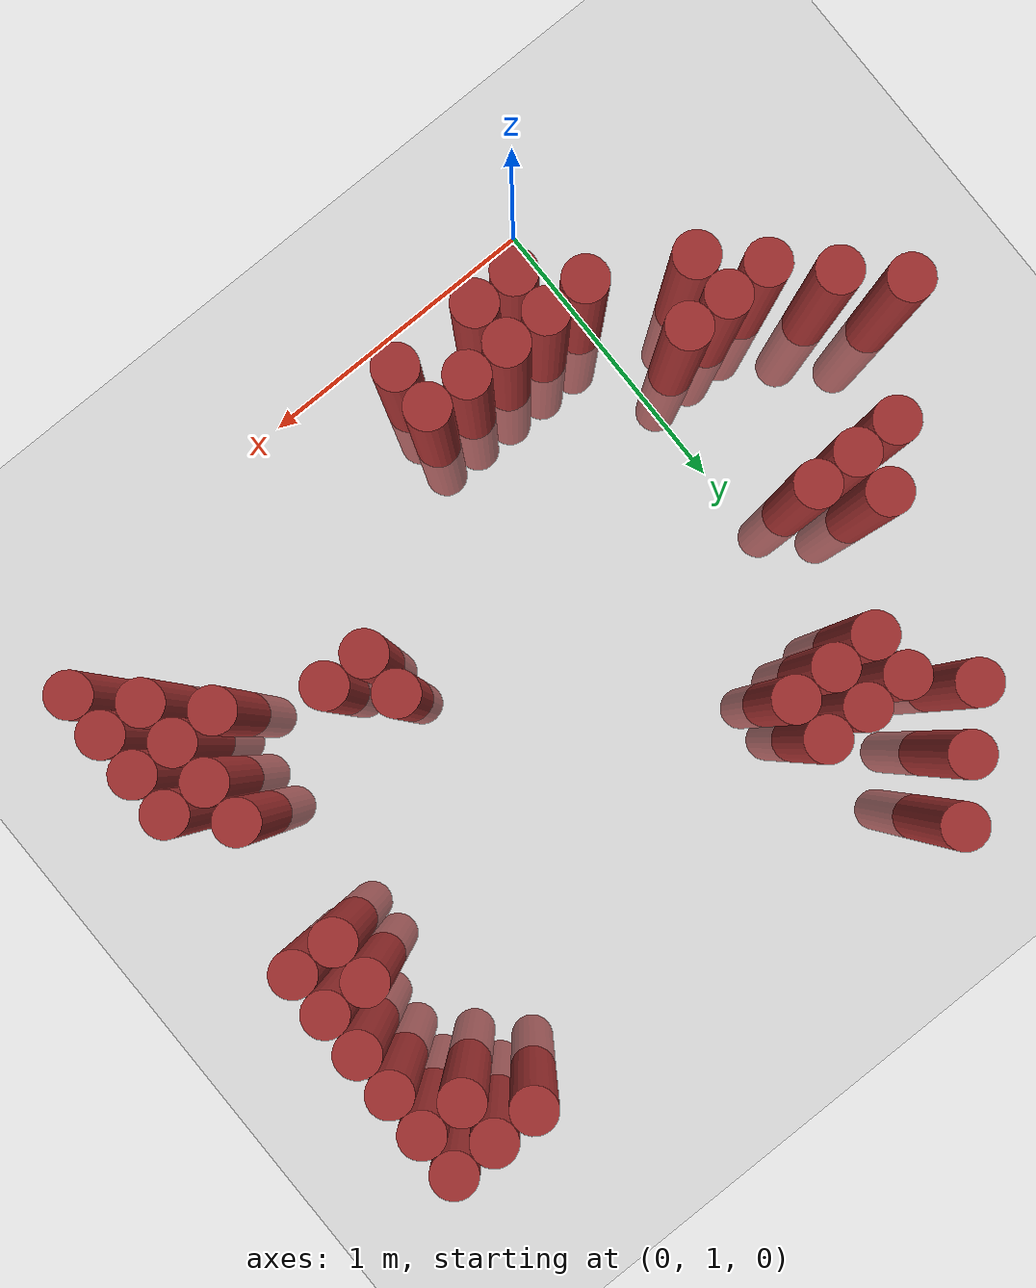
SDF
<sdf version="1.6">
 <world name="default">
  <model name="ground_plane">
   <static>1</static>
   <link name="link">
    <collision name="collision">
     <geometry><plane><normal>0 0 1</normal><size>100 100</size></plane></geometry>
     <surface><friction><ode><mu>100</mu><mu2>50</mu2></ode></friction></surface>
    </collision>
    <visual name="visual">
     <cast_shadows>0</cast_shadows>
     <geometry><plane><normal>0 0 1</normal><size>100 100</size></plane></geometry>
     <material>
      <script><uri>file://media/materials/scripts/gazebo.material</uri><name>Gazebo/Grey</name></script>
     </material>
    </visual>
   </link>
  </model>
  <model name="unit_cylinder_384">
   <static>1</static>
   <pose>-0.725000 1.975000 0.000000 0.000000 0.000000 0.000000</pose>
   <link name="link">
    <inertial>
     <mass>1</mass>
     <inertia><ixx>0.145833</ixx><ixy>0</ixy><ixz>0</ixz><iyy>0.145833</iyy><iyz>0</iyz><izz>0.125</izz></inertia>
    </inertial>
    <collision name="collision">
     <geometry><cylinder><radius>0.075000</radius><length>1.5</length></cylinder></geometry>
    </collision>
    <visual name="visual">
     <geometry><cylinder><radius>0.075000</radius><length>1.5</length></cylinder></geometry>
     <material>
      <ambient>0.648000 0.192000 0.192000 1</ambient>
      <diffuse>0.648000 0.192000 0.192000 1</diffuse>
     </material>
     <material>
      <script><name>Gazebo/Grey</name><uri>file://media/materials/scripts/gazebo.material</uri></script>
     </material>
    </visual>
   </link>
  </model>
  <model name="unit_cylinder_391">
   <static>1</static>
   <pose>-0.575000 1.825000 0.000000 0.000000 0.000000 0.000000</pose>
   <link name="link">
    <inertial>
     <mass>1</mass>
     <inertia><ixx>0.145833</ixx><ixy>0</ixy><ixz>0</ixz><iyy>0.145833</iyy><iyz>0</iyz><izz>0.125</izz></inertia>
    </inertial>
    <collision name="collision">
     <geometry><cylinder><radius>0.075000</radius><length>1.5</length></cylinder></geometry>
    </collision>
    <visual name="visual">
     <geometry><cylinder><radius>0.075000</radius><length>1.5</length></cylinder></geometry>
     <material>
      <ambient>0.648000 0.192000 0.192000 1</ambient>
      <diffuse>0.648000 0.192000 0.192000 1</diffuse>
     </material>
     <material>
      <script><name>Gazebo/Grey</name><uri>file://media/materials/scripts/gazebo.material</uri></script>
     </material>
    </visual>
   </link>
  </model>
  <model name="unit_cylinder_399">
   <static>1</static>
   <pose>-0.425000 1.675000 0.000000 0.000000 0.000000 0.000000</pose>
   <link name="link">
    <inertial>
     <mass>1</mass>
     <inertia><ixx>0.145833</ixx><ixy>0</ixy><ixz>0</ixz><iyy>0.145833</iyy><iyz>0</iyz><izz>0.125</izz></inertia>
    </inertial>
    <collision name="collision">
     <geometry><cylinder><radius>0.075000</radius><length>1.5</length></cylinder></geometry>
    </collision>
    <visual name="visual">
     <geometry><cylinder><radius>0.075000</radius><length>1.5</length></cylinder></geometry>
     <material>
      <ambient>0.648000 0.192000 0.192000 1</ambient>
      <diffuse>0.648000 0.192000 0.192000 1</diffuse>
     </material>
     <material>
      <script><name>Gazebo/Grey</name><uri>file://media/materials/scripts/gazebo.material</uri></script>
     </material>
    </visual>
   </link>
  </model>
  <model name="unit_cylinder_400">
   <static>1</static>
   <pose>-0.425000 2.275000 0.000000 0.000000 0.000000 0.000000</pose>
   <link name="link">
    <inertial>
     <mass>1</mass>
     <inertia><ixx>0.145833</ixx><ixy>0</ixy><ixz>0</ixz><iyy>0.145833</iyy><iyz>0</iyz><izz>0.125</izz></inertia>
    </inertial>
    <collision name="collision">
     <geometry><cylinder><radius>0.075000</radius><length>1.5</length></cylinder></geometry>
    </collision>
    <visual name="visual">
     <geometry><cylinder><radius>0.075000</radius><length>1.5</length></cylinder></geometry>
     <material>
      <ambient>0.648000 0.192000 0.192000 1</ambient>
      <diffuse>0.648000 0.192000 0.192000 1</diffuse>
     </material>
     <material>
      <script><name>Gazebo/Grey</name><uri>file://media/materials/scripts/gazebo.material</uri></script>
     </material>
    </visual>
   </link>
  </model>
  <model name="unit_cylinder_403">
   <static>1</static>
   <pose>-0.275000 1.525000 0.000000 0.000000 0.000000 0.000000</pose>
   <link name="link">
    <inertial>
     <mass>1</mass>
     <inertia><ixx>0.145833</ixx><ixy>0</ixy><ixz>0</ixz><iyy>0.145833</iyy><iyz>0</iyz><izz>0.125</izz></inertia>
    </inertial>
    <collision name="collision">
     <geometry><cylinder><radius>0.075000</radius><length>1.5</length></cylinder></geometry>
    </collision>
    <visual name="visual">
     <geometry><cylinder><radius>0.075000</radius><length>1.5</length></cylinder></geometry>
     <material>
      <ambient>0.648000 0.192000 0.192000 1</ambient>
      <diffuse>0.648000 0.192000 0.192000 1</diffuse>
     </material>
     <material>
      <script><name>Gazebo/Grey</name><uri>file://media/materials/scripts/gazebo.material</uri></script>
     </material>
    </visual>
   </link>
  </model>
  <model name="unit_cylinder_404">
   <static>1</static>
   <pose>-0.275000 1.675000 0.000000 0.000000 0.000000 0.000000</pose>
   <link name="link">
    <inertial>
     <mass>1</mass>
     <inertia><ixx>0.145833</ixx><ixy>0</ixy><ixz>0</ixz><iyy>0.145833</iyy><iyz>0</iyz><izz>0.125</izz></inertia>
    </inertial>
    <collision name="collision">
     <geometry><cylinder><radius>0.075000</radius><length>1.5</length></cylinder></geometry>
    </collision>
    <visual name="visual">
     <geometry><cylinder><radius>0.075000</radius><length>1.5</length></cylinder></geometry>
     <material>
      <ambient>0.648000 0.192000 0.192000 1</ambient>
      <diffuse>0.648000 0.192000 0.192000 1</diffuse>
     </material>
     <material>
      <script><name>Gazebo/Grey</name><uri>file://media/materials/scripts/gazebo.material</uri></script>
     </material>
    </visual>
   </link>
  </model>
  <model name="unit_cylinder_405">
   <static>1</static>
   <pose>-0.275000 2.275000 0.000000 0.000000 0.000000 0.000000</pose>
   <link name="link">
    <inertial>
     <mass>1</mass>
     <inertia><ixx>0.145833</ixx><ixy>0</ixy><ixz>0</ixz><iyy>0.145833</iyy><iyz>0</iyz><izz>0.125</izz></inertia>
    </inertial>
    <collision name="collision">
     <geometry><cylinder><radius>0.075000</radius><length>1.5</length></cylinder></geometry>
    </collision>
    <visual name="visual">
     <geometry><cylinder><radius>0.075000</radius><length>1.5</length></cylinder></geometry>
     <material>
      <ambient>0.648000 0.192000 0.192000 1</ambient>
      <diffuse>0.648000 0.192000 0.192000 1</diffuse>
     </material>
     <material>
      <script><name>Gazebo/Grey</name><uri>file://media/materials/scripts/gazebo.material</uri></script>
     </material>
    </visual>
   </link>
  </model>
  <model name="unit_cylinder_406">
   <static>1</static>
   <pose>-0.275000 2.425000 0.000000 0.000000 0.000000 0.000000</pose>
   <link name="link">
    <inertial>
     <mass>1</mass>
     <inertia><ixx>0.145833</ixx><ixy>0</ixy><ixz>0</ixz><iyy>0.145833</iyy><iyz>0</iyz><izz>0.125</izz></inertia>
    </inertial>
    <collision name="collision">
     <geometry><cylinder><radius>0.075000</radius><length>1.5</length></cylinder></geometry>
    </collision>
    <visual name="visual">
     <geometry><cylinder><radius>0.075000</radius><length>1.5</length></cylinder></geometry>
     <material>
      <ambient>0.648000 0.192000 0.192000 1</ambient>
      <diffuse>0.648000 0.192000 0.192000 1</diffuse>
     </material>
     <material>
      <script><name>Gazebo/Grey</name><uri>file://media/materials/scripts/gazebo.material</uri></script>
     </material>
    </visual>
   </link>
  </model>
  <model name="unit_cylinder_411">
   <static>1</static>
   <pose>-0.125000 1.675000 0.000000 0.000000 0.000000 0.000000</pose>
   <link name="link">
    <inertial>
     <mass>1</mass>
     <inertia><ixx>0.145833</ixx><ixy>0</ixy><ixz>0</ixz><iyy>0.145833</iyy><iyz>0</iyz><izz>0.125</izz></inertia>
    </inertial>
    <collision name="collision">
     <geometry><cylinder><radius>0.075000</radius><length>1.5</length></cylinder></geometry>
    </collision>
    <visual name="visual">
     <geometry><cylinder><radius>0.075000</radius><length>1.5</length></cylinder></geometry>
     <material>
      <ambient>0.648000 0.192000 0.192000 1</ambient>
      <diffuse>0.648000 0.192000 0.192000 1</diffuse>
     </material>
     <material>
      <script><name>Gazebo/Grey</name><uri>file://media/materials/scripts/gazebo.material</uri></script>
     </material>
    </visual>
   </link>
  </model>
  <model name="unit_cylinder_412">
   <static>1</static>
   <pose>-0.125000 2.275000 0.000000 0.000000 0.000000 0.000000</pose>
   <link name="link">
    <inertial>
     <mass>1</mass>
     <inertia><ixx>0.145833</ixx><ixy>0</ixy><ixz>0</ixz><iyy>0.145833</iyy><iyz>0</iyz><izz>0.125</izz></inertia>
    </inertial>
    <collision name="collision">
     <geometry><cylinder><radius>0.075000</radius><length>1.5</length></cylinder></geometry>
    </collision>
    <visual name="visual">
     <geometry><cylinder><radius>0.075000</radius><length>1.5</length></cylinder></geometry>
     <material>
      <ambient>0.648000 0.192000 0.192000 1</ambient>
      <diffuse>0.648000 0.192000 0.192000 1</diffuse>
     </material>
     <material>
      <script><name>Gazebo/Grey</name><uri>file://media/materials/scripts/gazebo.material</uri></script>
     </material>
    </visual>
   </link>
  </model>
  <model name="unit_cylinder_413">
   <static>1</static>
   <pose>-0.125000 3.025000 0.000000 0.000000 0.000000 0.000000</pose>
   <link name="link">
    <inertial>
     <mass>1</mass>
     <inertia><ixx>0.145833</ixx><ixy>0</ixy><ixz>0</ixz><iyy>0.145833</iyy><iyz>0</iyz><izz>0.125</izz></inertia>
    </inertial>
    <collision name="collision">
     <geometry><cylinder><radius>0.075000</radius><length>1.5</length></cylinder></geometry>
    </collision>
    <visual name="visual">
     <geometry><cylinder><radius>0.075000</radius><length>1.5</length></cylinder></geometry>
     <material>
      <ambient>0.648000 0.192000 0.192000 1</ambient>
      <diffuse>0.648000 0.192000 0.192000 1</diffuse>
     </material>
     <material>
      <script><name>Gazebo/Grey</name><uri>file://media/materials/scripts/gazebo.material</uri></script>
     </material>
    </visual>
   </link>
  </model>
  <model name="unit_cylinder_422">
   <static>1</static>
   <pose>0.025000 1.375000 0.000000 0.000000 0.000000 0.000000</pose>
   <link name="link">
    <inertial>
     <mass>1</mass>
     <inertia><ixx>0.145833</ixx><ixy>0</ixy><ixz>0</ixz><iyy>0.145833</iyy><iyz>0</iyz><izz>0.125</izz></inertia>
    </inertial>
    <collision name="collision">
     <geometry><cylinder><radius>0.075000</radius><length>1.5</length></cylinder></geometry>
    </collision>
    <visual name="visual">
     <geometry><cylinder><radius>0.075000</radius><length>1.5</length></cylinder></geometry>
     <material>
      <ambient>0.648000 0.192000 0.192000 1</ambient>
      <diffuse>0.648000 0.192000 0.192000 1</diffuse>
     </material>
     <material>
      <script><name>Gazebo/Grey</name><uri>file://media/materials/scripts/gazebo.material</uri></script>
     </material>
    </visual>
   </link>
  </model>
  <model name="unit_cylinder_423">
   <static>1</static>
   <pose>0.025000 2.725000 0.000000 0.000000 0.000000 0.000000</pose>
   <link name="link">
    <inertial>
     <mass>1</mass>
     <inertia><ixx>0.145833</ixx><ixy>0</ixy><ixz>0</ixz><iyy>0.145833</iyy><iyz>0</iyz><izz>0.125</izz></inertia>
    </inertial>
    <collision name="collision">
     <geometry><cylinder><radius>0.075000</radius><length>1.5</length></cylinder></geometry>
    </collision>
    <visual name="visual">
     <geometry><cylinder><radius>0.075000</radius><length>1.5</length></cylinder></geometry>
     <material>
      <ambient>0.648000 0.192000 0.192000 1</ambient>
      <diffuse>0.648000 0.192000 0.192000 1</diffuse>
     </material>
     <material>
      <script><name>Gazebo/Grey</name><uri>file://media/materials/scripts/gazebo.material</uri></script>
     </material>
    </visual>
   </link>
  </model>
  <model name="unit_cylinder_424">
   <static>1</static>
   <pose>0.025000 2.875000 0.000000 0.000000 0.000000 0.000000</pose>
   <link name="link">
    <inertial>
     <mass>1</mass>
     <inertia><ixx>0.145833</ixx><ixy>0</ixy><ixz>0</ixz><iyy>0.145833</iyy><iyz>0</iyz><izz>0.125</izz></inertia>
    </inertial>
    <collision name="collision">
     <geometry><cylinder><radius>0.075000</radius><length>1.5</length></cylinder></geometry>
    </collision>
    <visual name="visual">
     <geometry><cylinder><radius>0.075000</radius><length>1.5</length></cylinder></geometry>
     <material>
      <ambient>0.648000 0.192000 0.192000 1</ambient>
      <diffuse>0.648000 0.192000 0.192000 1</diffuse>
     </material>
     <material>
      <script><name>Gazebo/Grey</name><uri>file://media/materials/scripts/gazebo.material</uri></script>
     </material>
    </visual>
   </link>
  </model>
  <model name="unit_cylinder_425">
   <static>1</static>
   <pose>0.025000 3.175000 0.000000 0.000000 0.000000 0.000000</pose>
   <link name="link">
    <inertial>
     <mass>1</mass>
     <inertia><ixx>0.145833</ixx><ixy>0</ixy><ixz>0</ixz><iyy>0.145833</iyy><iyz>0</iyz><izz>0.125</izz></inertia>
    </inertial>
    <collision name="collision">
     <geometry><cylinder><radius>0.075000</radius><length>1.5</length></cylinder></geometry>
    </collision>
    <visual name="visual">
     <geometry><cylinder><radius>0.075000</radius><length>1.5</length></cylinder></geometry>
     <material>
      <ambient>0.648000 0.192000 0.192000 1</ambient>
      <diffuse>0.648000 0.192000 0.192000 1</diffuse>
     </material>
     <material>
      <script><name>Gazebo/Grey</name><uri>file://media/materials/scripts/gazebo.material</uri></script>
     </material>
    </visual>
   </link>
  </model>
  <model name="unit_cylinder_436">
   <static>1</static>
   <pose>0.175000 1.225000 0.000000 0.000000 0.000000 0.000000</pose>
   <link name="link">
    <inertial>
     <mass>1</mass>
     <inertia><ixx>0.145833</ixx><ixy>0</ixy><ixz>0</ixz><iyy>0.145833</iyy><iyz>0</iyz><izz>0.125</izz></inertia>
    </inertial>
    <collision name="collision">
     <geometry><cylinder><radius>0.075000</radius><length>1.5</length></cylinder></geometry>
    </collision>
    <visual name="visual">
     <geometry><cylinder><radius>0.075000</radius><length>1.5</length></cylinder></geometry>
     <material>
      <ambient>0.648000 0.192000 0.192000 1</ambient>
      <diffuse>0.648000 0.192000 0.192000 1</diffuse>
     </material>
     <material>
      <script><name>Gazebo/Grey</name><uri>file://media/materials/scripts/gazebo.material</uri></script>
     </material>
    </visual>
   </link>
  </model>
  <model name="unit_cylinder_437">
   <static>1</static>
   <pose>0.175000 1.375000 0.000000 0.000000 0.000000 0.000000</pose>
   <link name="link">
    <inertial>
     <mass>1</mass>
     <inertia><ixx>0.145833</ixx><ixy>0</ixy><ixz>0</ixz><iyy>0.145833</iyy><iyz>0</iyz><izz>0.125</izz></inertia>
    </inertial>
    <collision name="collision">
     <geometry><cylinder><radius>0.075000</radius><length>1.5</length></cylinder></geometry>
    </collision>
    <visual name="visual">
     <geometry><cylinder><radius>0.075000</radius><length>1.5</length></cylinder></geometry>
     <material>
      <ambient>0.648000 0.192000 0.192000 1</ambient>
      <diffuse>0.648000 0.192000 0.192000 1</diffuse>
     </material>
     <material>
      <script><name>Gazebo/Grey</name><uri>file://media/materials/scripts/gazebo.material</uri></script>
     </material>
    </visual>
   </link>
  </model>
  <model name="unit_cylinder_438">
   <static>1</static>
   <pose>0.175000 2.725000 0.000000 0.000000 0.000000 0.000000</pose>
   <link name="link">
    <inertial>
     <mass>1</mass>
     <inertia><ixx>0.145833</ixx><ixy>0</ixy><ixz>0</ixz><iyy>0.145833</iyy><iyz>0</iyz><izz>0.125</izz></inertia>
    </inertial>
    <collision name="collision">
     <geometry><cylinder><radius>0.075000</radius><length>1.5</length></cylinder></geometry>
    </collision>
    <visual name="visual">
     <geometry><cylinder><radius>0.075000</radius><length>1.5</length></cylinder></geometry>
     <material>
      <ambient>0.648000 0.192000 0.192000 1</ambient>
      <diffuse>0.648000 0.192000 0.192000 1</diffuse>
     </material>
     <material>
      <script><name>Gazebo/Grey</name><uri>file://media/materials/scripts/gazebo.material</uri></script>
     </material>
    </visual>
   </link>
  </model>
  <model name="unit_cylinder_439">
   <static>1</static>
   <pose>0.175000 2.875000 0.000000 0.000000 0.000000 0.000000</pose>
   <link name="link">
    <inertial>
     <mass>1</mass>
     <inertia><ixx>0.145833</ixx><ixy>0</ixy><ixz>0</ixz><iyy>0.145833</iyy><iyz>0</iyz><izz>0.125</izz></inertia>
    </inertial>
    <collision name="collision">
     <geometry><cylinder><radius>0.075000</radius><length>1.5</length></cylinder></geometry>
    </collision>
    <visual name="visual">
     <geometry><cylinder><radius>0.075000</radius><length>1.5</length></cylinder></geometry>
     <material>
      <ambient>0.648000 0.192000 0.192000 1</ambient>
      <diffuse>0.648000 0.192000 0.192000 1</diffuse>
     </material>
     <material>
      <script><name>Gazebo/Grey</name><uri>file://media/materials/scripts/gazebo.material</uri></script>
     </material>
    </visual>
   </link>
  </model>
  <model name="unit_cylinder_440">
   <static>1</static>
   <pose>0.175000 3.325000 0.000000 0.000000 0.000000 0.000000</pose>
   <link name="link">
    <inertial>
     <mass>1</mass>
     <inertia><ixx>0.145833</ixx><ixy>0</ixy><ixz>0</ixz><iyy>0.145833</iyy><iyz>0</iyz><izz>0.125</izz></inertia>
    </inertial>
    <collision name="collision">
     <geometry><cylinder><radius>0.075000</radius><length>1.5</length></cylinder></geometry>
    </collision>
    <visual name="visual">
     <geometry><cylinder><radius>0.075000</radius><length>1.5</length></cylinder></geometry>
     <material>
      <ambient>0.648000 0.192000 0.192000 1</ambient>
      <diffuse>0.648000 0.192000 0.192000 1</diffuse>
     </material>
     <material>
      <script><name>Gazebo/Grey</name><uri>file://media/materials/scripts/gazebo.material</uri></script>
     </material>
    </visual>
   </link>
  </model>
  <model name="unit_cylinder_451">
   <static>1</static>
   <pose>0.325000 1.225000 0.000000 0.000000 0.000000 0.000000</pose>
   <link name="link">
    <inertial>
     <mass>1</mass>
     <inertia><ixx>0.145833</ixx><ixy>0</ixy><ixz>0</ixz><iyy>0.145833</iyy><iyz>0</iyz><izz>0.125</izz></inertia>
    </inertial>
    <collision name="collision">
     <geometry><cylinder><radius>0.075000</radius><length>1.5</length></cylinder></geometry>
    </collision>
    <visual name="visual">
     <geometry><cylinder><radius>0.075000</radius><length>1.5</length></cylinder></geometry>
     <material>
      <ambient>0.648000 0.192000 0.192000 1</ambient>
      <diffuse>0.648000 0.192000 0.192000 1</diffuse>
     </material>
     <material>
      <script><name>Gazebo/Grey</name><uri>file://media/materials/scripts/gazebo.material</uri></script>
     </material>
    </visual>
   </link>
  </model>
  <model name="unit_cylinder_452">
   <static>1</static>
   <pose>0.325000 1.375000 0.000000 0.000000 0.000000 0.000000</pose>
   <link name="link">
    <inertial>
     <mass>1</mass>
     <inertia><ixx>0.145833</ixx><ixy>0</ixy><ixz>0</ixz><iyy>0.145833</iyy><iyz>0</iyz><izz>0.125</izz></inertia>
    </inertial>
    <collision name="collision">
     <geometry><cylinder><radius>0.075000</radius><length>1.5</length></cylinder></geometry>
    </collision>
    <visual name="visual">
     <geometry><cylinder><radius>0.075000</radius><length>1.5</length></cylinder></geometry>
     <material>
      <ambient>0.648000 0.192000 0.192000 1</ambient>
      <diffuse>0.648000 0.192000 0.192000 1</diffuse>
     </material>
     <material>
      <script><name>Gazebo/Grey</name><uri>file://media/materials/scripts/gazebo.material</uri></script>
     </material>
    </visual>
   </link>
  </model>
  <model name="unit_cylinder_453">
   <static>1</static>
   <pose>0.325000 2.725000 0.000000 0.000000 0.000000 0.000000</pose>
   <link name="link">
    <inertial>
     <mass>1</mass>
     <inertia><ixx>0.145833</ixx><ixy>0</ixy><ixz>0</ixz><iyy>0.145833</iyy><iyz>0</iyz><izz>0.125</izz></inertia>
    </inertial>
    <collision name="collision">
     <geometry><cylinder><radius>0.075000</radius><length>1.5</length></cylinder></geometry>
    </collision>
    <visual name="visual">
     <geometry><cylinder><radius>0.075000</radius><length>1.5</length></cylinder></geometry>
     <material>
      <ambient>0.648000 0.192000 0.192000 1</ambient>
      <diffuse>0.648000 0.192000 0.192000 1</diffuse>
     </material>
     <material>
      <script><name>Gazebo/Grey</name><uri>file://media/materials/scripts/gazebo.material</uri></script>
     </material>
    </visual>
   </link>
  </model>
  <model name="unit_cylinder_454">
   <static>1</static>
   <pose>0.325000 2.875000 0.000000 0.000000 0.000000 0.000000</pose>
   <link name="link">
    <inertial>
     <mass>1</mass>
     <inertia><ixx>0.145833</ixx><ixy>0</ixy><ixz>0</ixz><iyy>0.145833</iyy><iyz>0</iyz><izz>0.125</izz></inertia>
    </inertial>
    <collision name="collision">
     <geometry><cylinder><radius>0.075000</radius><length>1.5</length></cylinder></geometry>
    </collision>
    <visual name="visual">
     <geometry><cylinder><radius>0.075000</radius><length>1.5</length></cylinder></geometry>
     <material>
      <ambient>0.648000 0.192000 0.192000 1</ambient>
      <diffuse>0.648000 0.192000 0.192000 1</diffuse>
     </material>
     <material>
      <script><name>Gazebo/Grey</name><uri>file://media/materials/scripts/gazebo.material</uri></script>
     </material>
    </visual>
   </link>
  </model>
  <model name="unit_cylinder_468">
   <static>1</static>
   <pose>0.475000 1.375000 0.000000 0.000000 0.000000 0.000000</pose>
   <link name="link">
    <inertial>
     <mass>1</mass>
     <inertia><ixx>0.145833</ixx><ixy>0</ixy><ixz>0</ixz><iyy>0.145833</iyy><iyz>0</iyz><izz>0.125</izz></inertia>
    </inertial>
    <collision name="collision">
     <geometry><cylinder><radius>0.075000</radius><length>1.5</length></cylinder></geometry>
    </collision>
    <visual name="visual">
     <geometry><cylinder><radius>0.075000</radius><length>1.5</length></cylinder></geometry>
     <material>
      <ambient>0.648000 0.192000 0.192000 1</ambient>
      <diffuse>0.648000 0.192000 0.192000 1</diffuse>
     </material>
     <material>
      <script><name>Gazebo/Grey</name><uri>file://media/materials/scripts/gazebo.material</uri></script>
     </material>
    </visual>
   </link>
  </model>
  <model name="unit_cylinder_476">
   <static>1</static>
   <pose>0.625000 1.225000 0.000000 0.000000 0.000000 0.000000</pose>
   <link name="link">
    <inertial>
     <mass>1</mass>
     <inertia><ixx>0.145833</ixx><ixy>0</ixy><ixz>0</ixz><iyy>0.145833</iyy><iyz>0</iyz><izz>0.125</izz></inertia>
    </inertial>
    <collision name="collision">
     <geometry><cylinder><radius>0.075000</radius><length>1.5</length></cylinder></geometry>
    </collision>
    <visual name="visual">
     <geometry><cylinder><radius>0.075000</radius><length>1.5</length></cylinder></geometry>
     <material>
      <ambient>0.648000 0.192000 0.192000 1</ambient>
      <diffuse>0.648000 0.192000 0.192000 1</diffuse>
     </material>
     <material>
      <script><name>Gazebo/Grey</name><uri>file://media/materials/scripts/gazebo.material</uri></script>
     </material>
    </visual>
   </link>
  </model>
  <model name="unit_cylinder_477">
   <static>1</static>
   <pose>0.625000 1.375000 0.000000 0.000000 0.000000 0.000000</pose>
   <link name="link">
    <inertial>
     <mass>1</mass>
     <inertia><ixx>0.145833</ixx><ixy>0</ixy><ixz>0</ixz><iyy>0.145833</iyy><iyz>0</iyz><izz>0.125</izz></inertia>
    </inertial>
    <collision name="collision">
     <geometry><cylinder><radius>0.075000</radius><length>1.5</length></cylinder></geometry>
    </collision>
    <visual name="visual">
     <geometry><cylinder><radius>0.075000</radius><length>1.5</length></cylinder></geometry>
     <material>
      <ambient>0.648000 0.192000 0.192000 1</ambient>
      <diffuse>0.648000 0.192000 0.192000 1</diffuse>
     </material>
     <material>
      <script><name>Gazebo/Grey</name><uri>file://media/materials/scripts/gazebo.material</uri></script>
     </material>
    </visual>
   </link>
  </model>
  <model name="unit_cylinder_500">
   <static>1</static>
   <pose>1.225000 1.825000 0.000000 0.000000 0.000000 0.000000</pose>
   <link name="link">
    <inertial>
     <mass>1</mass>
     <inertia><ixx>0.145833</ixx><ixy>0</ixy><ixz>0</ixz><iyy>0.145833</iyy><iyz>0</iyz><izz>0.125</izz></inertia>
    </inertial>
    <collision name="collision">
     <geometry><cylinder><radius>0.075000</radius><length>1.5</length></cylinder></geometry>
    </collision>
    <visual name="visual">
     <geometry><cylinder><radius>0.075000</radius><length>1.5</length></cylinder></geometry>
     <material>
      <ambient>0.648000 0.192000 0.192000 1</ambient>
      <diffuse>0.648000 0.192000 0.192000 1</diffuse>
     </material>
     <material>
      <script><name>Gazebo/Grey</name><uri>file://media/materials/scripts/gazebo.material</uri></script>
     </material>
    </visual>
   </link>
  </model>
  <model name="unit_cylinder_501">
   <static>1</static>
   <pose>1.225000 1.975000 0.000000 0.000000 0.000000 0.000000</pose>
   <link name="link">
    <inertial>
     <mass>1</mass>
     <inertia><ixx>0.145833</ixx><ixy>0</ixy><ixz>0</ixz><iyy>0.145833</iyy><iyz>0</iyz><izz>0.125</izz></inertia>
    </inertial>
    <collision name="collision">
     <geometry><cylinder><radius>0.075000</radius><length>1.5</length></cylinder></geometry>
    </collision>
    <visual name="visual">
     <geometry><cylinder><radius>0.075000</radius><length>1.5</length></cylinder></geometry>
     <material>
      <ambient>0.648000 0.192000 0.192000 1</ambient>
      <diffuse>0.648000 0.192000 0.192000 1</diffuse>
     </material>
     <material>
      <script><name>Gazebo/Grey</name><uri>file://media/materials/scripts/gazebo.material</uri></script>
     </material>
    </visual>
   </link>
  </model>
  <model name="unit_cylinder_507">
   <static>1</static>
   <pose>1.375000 1.825000 0.000000 0.000000 0.000000 0.000000</pose>
   <link name="link">
    <inertial>
     <mass>1</mass>
     <inertia><ixx>0.145833</ixx><ixy>0</ixy><ixz>0</ixz><iyy>0.145833</iyy><iyz>0</iyz><izz>0.125</izz></inertia>
    </inertial>
    <collision name="collision">
     <geometry><cylinder><radius>0.075000</radius><length>1.5</length></cylinder></geometry>
    </collision>
    <visual name="visual">
     <geometry><cylinder><radius>0.075000</radius><length>1.5</length></cylinder></geometry>
     <material>
      <ambient>0.648000 0.192000 0.192000 1</ambient>
      <diffuse>0.648000 0.192000 0.192000 1</diffuse>
     </material>
     <material>
      <script><name>Gazebo/Grey</name><uri>file://media/materials/scripts/gazebo.material</uri></script>
     </material>
    </visual>
   </link>
  </model>
  <model name="unit_cylinder_525">
   <static>1</static>
   <pose>1.675000 1.675000 0.000000 0.000000 0.000000 0.000000</pose>
   <link name="link">
    <inertial>
     <mass>1</mass>
     <inertia><ixx>0.145833</ixx><ixy>0</ixy><ixz>0</ixz><iyy>0.145833</iyy><iyz>0</iyz><izz>0.125</izz></inertia>
    </inertial>
    <collision name="collision">
     <geometry><cylinder><radius>0.075000</radius><length>1.5</length></cylinder></geometry>
    </collision>
    <visual name="visual">
     <geometry><cylinder><radius>0.075000</radius><length>1.5</length></cylinder></geometry>
     <material>
      <ambient>0.648000 0.192000 0.192000 1</ambient>
      <diffuse>0.648000 0.192000 0.192000 1</diffuse>
     </material>
     <material>
      <script><name>Gazebo/Grey</name><uri>file://media/materials/scripts/gazebo.material</uri></script>
     </material>
    </visual>
   </link>
  </model>
  <model name="unit_cylinder_526">
   <static>1</static>
   <pose>1.675000 3.175000 0.000000 0.000000 0.000000 0.000000</pose>
   <link name="link">
    <inertial>
     <mass>1</mass>
     <inertia><ixx>0.145833</ixx><ixy>0</ixy><ixz>0</ixz><iyy>0.145833</iyy><iyz>0</iyz><izz>0.125</izz></inertia>
    </inertial>
    <collision name="collision">
     <geometry><cylinder><radius>0.075000</radius><length>1.5</length></cylinder></geometry>
    </collision>
    <visual name="visual">
     <geometry><cylinder><radius>0.075000</radius><length>1.5</length></cylinder></geometry>
     <material>
      <ambient>0.648000 0.192000 0.192000 1</ambient>
      <diffuse>0.648000 0.192000 0.192000 1</diffuse>
     </material>
     <material>
      <script><name>Gazebo/Grey</name><uri>file://media/materials/scripts/gazebo.material</uri></script>
     </material>
    </visual>
   </link>
  </model>
  <model name="unit_cylinder_529">
   <static>1</static>
   <pose>1.825000 1.525000 0.000000 0.000000 0.000000 0.000000</pose>
   <link name="link">
    <inertial>
     <mass>1</mass>
     <inertia><ixx>0.145833</ixx><ixy>0</ixy><ixz>0</ixz><iyy>0.145833</iyy><iyz>0</iyz><izz>0.125</izz></inertia>
    </inertial>
    <collision name="collision">
     <geometry><cylinder><radius>0.075000</radius><length>1.5</length></cylinder></geometry>
    </collision>
    <visual name="visual">
     <geometry><cylinder><radius>0.075000</radius><length>1.5</length></cylinder></geometry>
     <material>
      <ambient>0.648000 0.192000 0.192000 1</ambient>
      <diffuse>0.648000 0.192000 0.192000 1</diffuse>
     </material>
     <material>
      <script><name>Gazebo/Grey</name><uri>file://media/materials/scripts/gazebo.material</uri></script>
     </material>
    </visual>
   </link>
  </model>
  <model name="unit_cylinder_530">
   <static>1</static>
   <pose>1.825000 1.675000 0.000000 0.000000 0.000000 0.000000</pose>
   <link name="link">
    <inertial>
     <mass>1</mass>
     <inertia><ixx>0.145833</ixx><ixy>0</ixy><ixz>0</ixz><iyy>0.145833</iyy><iyz>0</iyz><izz>0.125</izz></inertia>
    </inertial>
    <collision name="collision">
     <geometry><cylinder><radius>0.075000</radius><length>1.5</length></cylinder></geometry>
    </collision>
    <visual name="visual">
     <geometry><cylinder><radius>0.075000</radius><length>1.5</length></cylinder></geometry>
     <material>
      <ambient>0.648000 0.192000 0.192000 1</ambient>
      <diffuse>0.648000 0.192000 0.192000 1</diffuse>
     </material>
     <material>
      <script><name>Gazebo/Grey</name><uri>file://media/materials/scripts/gazebo.material</uri></script>
     </material>
    </visual>
   </link>
  </model>
  <model name="unit_cylinder_531">
   <static>1</static>
   <pose>1.825000 1.825000 0.000000 0.000000 0.000000 0.000000</pose>
   <link name="link">
    <inertial>
     <mass>1</mass>
     <inertia><ixx>0.145833</ixx><ixy>0</ixy><ixz>0</ixz><iyy>0.145833</iyy><iyz>0</iyz><izz>0.125</izz></inertia>
    </inertial>
    <collision name="collision">
     <geometry><cylinder><radius>0.075000</radius><length>1.5</length></cylinder></geometry>
    </collision>
    <visual name="visual">
     <geometry><cylinder><radius>0.075000</radius><length>1.5</length></cylinder></geometry>
     <material>
      <ambient>0.648000 0.192000 0.192000 1</ambient>
      <diffuse>0.648000 0.192000 0.192000 1</diffuse>
     </material>
     <material>
      <script><name>Gazebo/Grey</name><uri>file://media/materials/scripts/gazebo.material</uri></script>
     </material>
    </visual>
   </link>
  </model>
  <model name="unit_cylinder_532">
   <static>1</static>
   <pose>1.825000 1.975000 0.000000 0.000000 0.000000 0.000000</pose>
   <link name="link">
    <inertial>
     <mass>1</mass>
     <inertia><ixx>0.145833</ixx><ixy>0</ixy><ixz>0</ixz><iyy>0.145833</iyy><iyz>0</iyz><izz>0.125</izz></inertia>
    </inertial>
    <collision name="collision">
     <geometry><cylinder><radius>0.075000</radius><length>1.5</length></cylinder></geometry>
    </collision>
    <visual name="visual">
     <geometry><cylinder><radius>0.075000</radius><length>1.5</length></cylinder></geometry>
     <material>
      <ambient>0.648000 0.192000 0.192000 1</ambient>
      <diffuse>0.648000 0.192000 0.192000 1</diffuse>
     </material>
     <material>
      <script><name>Gazebo/Grey</name><uri>file://media/materials/scripts/gazebo.material</uri></script>
     </material>
    </visual>
   </link>
  </model>
  <model name="unit_cylinder_533">
   <static>1</static>
   <pose>1.825000 2.425000 0.000000 0.000000 0.000000 0.000000</pose>
   <link name="link">
    <inertial>
     <mass>1</mass>
     <inertia><ixx>0.145833</ixx><ixy>0</ixy><ixz>0</ixz><iyy>0.145833</iyy><iyz>0</iyz><izz>0.125</izz></inertia>
    </inertial>
    <collision name="collision">
     <geometry><cylinder><radius>0.075000</radius><length>1.5</length></cylinder></geometry>
    </collision>
    <visual name="visual">
     <geometry><cylinder><radius>0.075000</radius><length>1.5</length></cylinder></geometry>
     <material>
      <ambient>0.648000 0.192000 0.192000 1</ambient>
      <diffuse>0.648000 0.192000 0.192000 1</diffuse>
     </material>
     <material>
      <script><name>Gazebo/Grey</name><uri>file://media/materials/scripts/gazebo.material</uri></script>
     </material>
    </visual>
   </link>
  </model>
  <model name="unit_cylinder_534">
   <static>1</static>
   <pose>1.825000 2.575000 0.000000 0.000000 0.000000 0.000000</pose>
   <link name="link">
    <inertial>
     <mass>1</mass>
     <inertia><ixx>0.145833</ixx><ixy>0</ixy><ixz>0</ixz><iyy>0.145833</iyy><iyz>0</iyz><izz>0.125</izz></inertia>
    </inertial>
    <collision name="collision">
     <geometry><cylinder><radius>0.075000</radius><length>1.5</length></cylinder></geometry>
    </collision>
    <visual name="visual">
     <geometry><cylinder><radius>0.075000</radius><length>1.5</length></cylinder></geometry>
     <material>
      <ambient>0.648000 0.192000 0.192000 1</ambient>
      <diffuse>0.648000 0.192000 0.192000 1</diffuse>
     </material>
     <material>
      <script><name>Gazebo/Grey</name><uri>file://media/materials/scripts/gazebo.material</uri></script>
     </material>
    </visual>
   </link>
  </model>
  <model name="unit_cylinder_535">
   <static>1</static>
   <pose>1.825000 3.025000 0.000000 0.000000 0.000000 0.000000</pose>
   <link name="link">
    <inertial>
     <mass>1</mass>
     <inertia><ixx>0.145833</ixx><ixy>0</ixy><ixz>0</ixz><iyy>0.145833</iyy><iyz>0</iyz><izz>0.125</izz></inertia>
    </inertial>
    <collision name="collision">
     <geometry><cylinder><radius>0.075000</radius><length>1.5</length></cylinder></geometry>
    </collision>
    <visual name="visual">
     <geometry><cylinder><radius>0.075000</radius><length>1.5</length></cylinder></geometry>
     <material>
      <ambient>0.648000 0.192000 0.192000 1</ambient>
      <diffuse>0.648000 0.192000 0.192000 1</diffuse>
     </material>
     <material>
      <script><name>Gazebo/Grey</name><uri>file://media/materials/scripts/gazebo.material</uri></script>
     </material>
    </visual>
   </link>
  </model>
  <model name="unit_cylinder_536">
   <static>1</static>
   <pose>1.825000 3.175000 0.000000 0.000000 0.000000 0.000000</pose>
   <link name="link">
    <inertial>
     <mass>1</mass>
     <inertia><ixx>0.145833</ixx><ixy>0</ixy><ixz>0</ixz><iyy>0.145833</iyy><iyz>0</iyz><izz>0.125</izz></inertia>
    </inertial>
    <collision name="collision">
     <geometry><cylinder><radius>0.075000</radius><length>1.5</length></cylinder></geometry>
    </collision>
    <visual name="visual">
     <geometry><cylinder><radius>0.075000</radius><length>1.5</length></cylinder></geometry>
     <material>
      <ambient>0.648000 0.192000 0.192000 1</ambient>
      <diffuse>0.648000 0.192000 0.192000 1</diffuse>
     </material>
     <material>
      <script><name>Gazebo/Grey</name><uri>file://media/materials/scripts/gazebo.material</uri></script>
     </material>
    </visual>
   </link>
  </model>
  <model name="unit_cylinder_538">
   <static>1</static>
   <pose>1.975000 1.375000 0.000000 0.000000 0.000000 0.000000</pose>
   <link name="link">
    <inertial>
     <mass>1</mass>
     <inertia><ixx>0.145833</ixx><ixy>0</ixy><ixz>0</ixz><iyy>0.145833</iyy><iyz>0</iyz><izz>0.125</izz></inertia>
    </inertial>
    <collision name="collision">
     <geometry><cylinder><radius>0.075000</radius><length>1.5</length></cylinder></geometry>
    </collision>
    <visual name="visual">
     <geometry><cylinder><radius>0.075000</radius><length>1.5</length></cylinder></geometry>
     <material>
      <ambient>0.648000 0.192000 0.192000 1</ambient>
      <diffuse>0.648000 0.192000 0.192000 1</diffuse>
     </material>
     <material>
      <script><name>Gazebo/Grey</name><uri>file://media/materials/scripts/gazebo.material</uri></script>
     </material>
    </visual>
   </link>
  </model>
  <model name="unit_cylinder_539">
   <static>1</static>
   <pose>1.975000 1.525000 0.000000 0.000000 0.000000 0.000000</pose>
   <link name="link">
    <inertial>
     <mass>1</mass>
     <inertia><ixx>0.145833</ixx><ixy>0</ixy><ixz>0</ixz><iyy>0.145833</iyy><iyz>0</iyz><izz>0.125</izz></inertia>
    </inertial>
    <collision name="collision">
     <geometry><cylinder><radius>0.075000</radius><length>1.5</length></cylinder></geometry>
    </collision>
    <visual name="visual">
     <geometry><cylinder><radius>0.075000</radius><length>1.5</length></cylinder></geometry>
     <material>
      <ambient>0.648000 0.192000 0.192000 1</ambient>
      <diffuse>0.648000 0.192000 0.192000 1</diffuse>
     </material>
     <material>
      <script><name>Gazebo/Grey</name><uri>file://media/materials/scripts/gazebo.material</uri></script>
     </material>
    </visual>
   </link>
  </model>
  <model name="unit_cylinder_540">
   <static>1</static>
   <pose>1.975000 1.675000 0.000000 0.000000 0.000000 0.000000</pose>
   <link name="link">
    <inertial>
     <mass>1</mass>
     <inertia><ixx>0.145833</ixx><ixy>0</ixy><ixz>0</ixz><iyy>0.145833</iyy><iyz>0</iyz><izz>0.125</izz></inertia>
    </inertial>
    <collision name="collision">
     <geometry><cylinder><radius>0.075000</radius><length>1.5</length></cylinder></geometry>
    </collision>
    <visual name="visual">
     <geometry><cylinder><radius>0.075000</radius><length>1.5</length></cylinder></geometry>
     <material>
      <ambient>0.648000 0.192000 0.192000 1</ambient>
      <diffuse>0.648000 0.192000 0.192000 1</diffuse>
     </material>
     <material>
      <script><name>Gazebo/Grey</name><uri>file://media/materials/scripts/gazebo.material</uri></script>
     </material>
    </visual>
   </link>
  </model>
  <model name="unit_cylinder_541">
   <static>1</static>
   <pose>1.975000 1.825000 0.000000 0.000000 0.000000 0.000000</pose>
   <link name="link">
    <inertial>
     <mass>1</mass>
     <inertia><ixx>0.145833</ixx><ixy>0</ixy><ixz>0</ixz><iyy>0.145833</iyy><iyz>0</iyz><izz>0.125</izz></inertia>
    </inertial>
    <collision name="collision">
     <geometry><cylinder><radius>0.075000</radius><length>1.5</length></cylinder></geometry>
    </collision>
    <visual name="visual">
     <geometry><cylinder><radius>0.075000</radius><length>1.5</length></cylinder></geometry>
     <material>
      <ambient>0.648000 0.192000 0.192000 1</ambient>
      <diffuse>0.648000 0.192000 0.192000 1</diffuse>
     </material>
     <material>
      <script><name>Gazebo/Grey</name><uri>file://media/materials/scripts/gazebo.material</uri></script>
     </material>
    </visual>
   </link>
  </model>
  <model name="unit_cylinder_542">
   <static>1</static>
   <pose>1.975000 2.425000 0.000000 0.000000 0.000000 0.000000</pose>
   <link name="link">
    <inertial>
     <mass>1</mass>
     <inertia><ixx>0.145833</ixx><ixy>0</ixy><ixz>0</ixz><iyy>0.145833</iyy><iyz>0</iyz><izz>0.125</izz></inertia>
    </inertial>
    <collision name="collision">
     <geometry><cylinder><radius>0.075000</radius><length>1.5</length></cylinder></geometry>
    </collision>
    <visual name="visual">
     <geometry><cylinder><radius>0.075000</radius><length>1.5</length></cylinder></geometry>
     <material>
      <ambient>0.648000 0.192000 0.192000 1</ambient>
      <diffuse>0.648000 0.192000 0.192000 1</diffuse>
     </material>
     <material>
      <script><name>Gazebo/Grey</name><uri>file://media/materials/scripts/gazebo.material</uri></script>
     </material>
    </visual>
   </link>
  </model>
  <model name="unit_cylinder_543">
   <static>1</static>
   <pose>1.975000 2.575000 0.000000 0.000000 0.000000 0.000000</pose>
   <link name="link">
    <inertial>
     <mass>1</mass>
     <inertia><ixx>0.145833</ixx><ixy>0</ixy><ixz>0</ixz><iyy>0.145833</iyy><iyz>0</iyz><izz>0.125</izz></inertia>
    </inertial>
    <collision name="collision">
     <geometry><cylinder><radius>0.075000</radius><length>1.5</length></cylinder></geometry>
    </collision>
    <visual name="visual">
     <geometry><cylinder><radius>0.075000</radius><length>1.5</length></cylinder></geometry>
     <material>
      <ambient>0.648000 0.192000 0.192000 1</ambient>
      <diffuse>0.648000 0.192000 0.192000 1</diffuse>
     </material>
     <material>
      <script><name>Gazebo/Grey</name><uri>file://media/materials/scripts/gazebo.material</uri></script>
     </material>
    </visual>
   </link>
  </model>
  <model name="unit_cylinder_544">
   <static>1</static>
   <pose>1.975000 2.725000 0.000000 0.000000 0.000000 0.000000</pose>
   <link name="link">
    <inertial>
     <mass>1</mass>
     <inertia><ixx>0.145833</ixx><ixy>0</ixy><ixz>0</ixz><iyy>0.145833</iyy><iyz>0</iyz><izz>0.125</izz></inertia>
    </inertial>
    <collision name="collision">
     <geometry><cylinder><radius>0.075000</radius><length>1.5</length></cylinder></geometry>
    </collision>
    <visual name="visual">
     <geometry><cylinder><radius>0.075000</radius><length>1.5</length></cylinder></geometry>
     <material>
      <ambient>0.648000 0.192000 0.192000 1</ambient>
      <diffuse>0.648000 0.192000 0.192000 1</diffuse>
     </material>
     <material>
      <script><name>Gazebo/Grey</name><uri>file://media/materials/scripts/gazebo.material</uri></script>
     </material>
    </visual>
   </link>
  </model>
  <model name="unit_cylinder_545">
   <static>1</static>
   <pose>1.975000 2.875000 0.000000 0.000000 0.000000 0.000000</pose>
   <link name="link">
    <inertial>
     <mass>1</mass>
     <inertia><ixx>0.145833</ixx><ixy>0</ixy><ixz>0</ixz><iyy>0.145833</iyy><iyz>0</iyz><izz>0.125</izz></inertia>
    </inertial>
    <collision name="collision">
     <geometry><cylinder><radius>0.075000</radius><length>1.5</length></cylinder></geometry>
    </collision>
    <visual name="visual">
     <geometry><cylinder><radius>0.075000</radius><length>1.5</length></cylinder></geometry>
     <material>
      <ambient>0.648000 0.192000 0.192000 1</ambient>
      <diffuse>0.648000 0.192000 0.192000 1</diffuse>
     </material>
     <material>
      <script><name>Gazebo/Grey</name><uri>file://media/materials/scripts/gazebo.material</uri></script>
     </material>
    </visual>
   </link>
  </model>
  <model name="unit_cylinder_546">
   <static>1</static>
   <pose>1.975000 3.025000 0.000000 0.000000 0.000000 0.000000</pose>
   <link name="link">
    <inertial>
     <mass>1</mass>
     <inertia><ixx>0.145833</ixx><ixy>0</ixy><ixz>0</ixz><iyy>0.145833</iyy><iyz>0</iyz><izz>0.125</izz></inertia>
    </inertial>
    <collision name="collision">
     <geometry><cylinder><radius>0.075000</radius><length>1.5</length></cylinder></geometry>
    </collision>
    <visual name="visual">
     <geometry><cylinder><radius>0.075000</radius><length>1.5</length></cylinder></geometry>
     <material>
      <ambient>0.648000 0.192000 0.192000 1</ambient>
      <diffuse>0.648000 0.192000 0.192000 1</diffuse>
     </material>
     <material>
      <script><name>Gazebo/Grey</name><uri>file://media/materials/scripts/gazebo.material</uri></script>
     </material>
    </visual>
   </link>
  </model>
  <model name="unit_cylinder_547">
   <static>1</static>
   <pose>1.975000 3.175000 0.000000 0.000000 0.000000 0.000000</pose>
   <link name="link">
    <inertial>
     <mass>1</mass>
     <inertia><ixx>0.145833</ixx><ixy>0</ixy><ixz>0</ixz><iyy>0.145833</iyy><iyz>0</iyz><izz>0.125</izz></inertia>
    </inertial>
    <collision name="collision">
     <geometry><cylinder><radius>0.075000</radius><length>1.5</length></cylinder></geometry>
    </collision>
    <visual name="visual">
     <geometry><cylinder><radius>0.075000</radius><length>1.5</length></cylinder></geometry>
     <material>
      <ambient>0.648000 0.192000 0.192000 1</ambient>
      <diffuse>0.648000 0.192000 0.192000 1</diffuse>
     </material>
     <material>
      <script><name>Gazebo/Grey</name><uri>file://media/materials/scripts/gazebo.material</uri></script>
     </material>
    </visual>
   </link>
  </model>
 </world>
</sdf>
